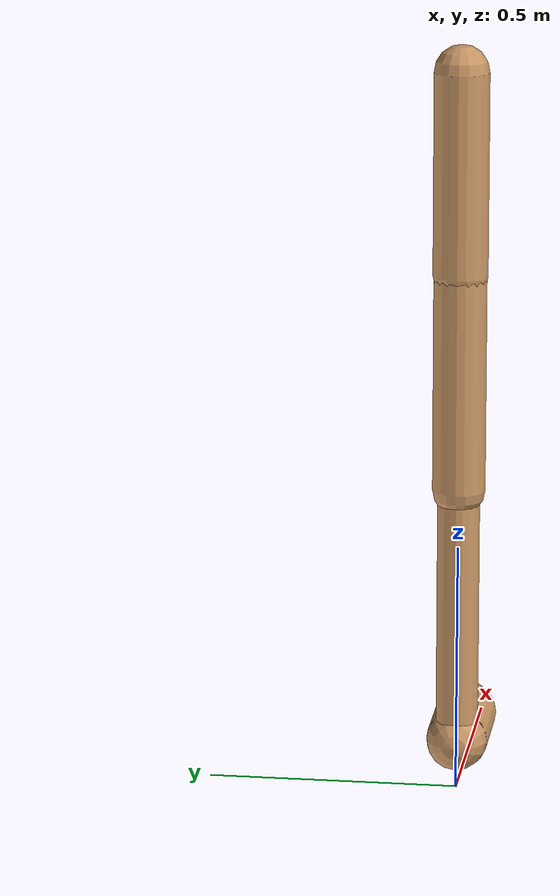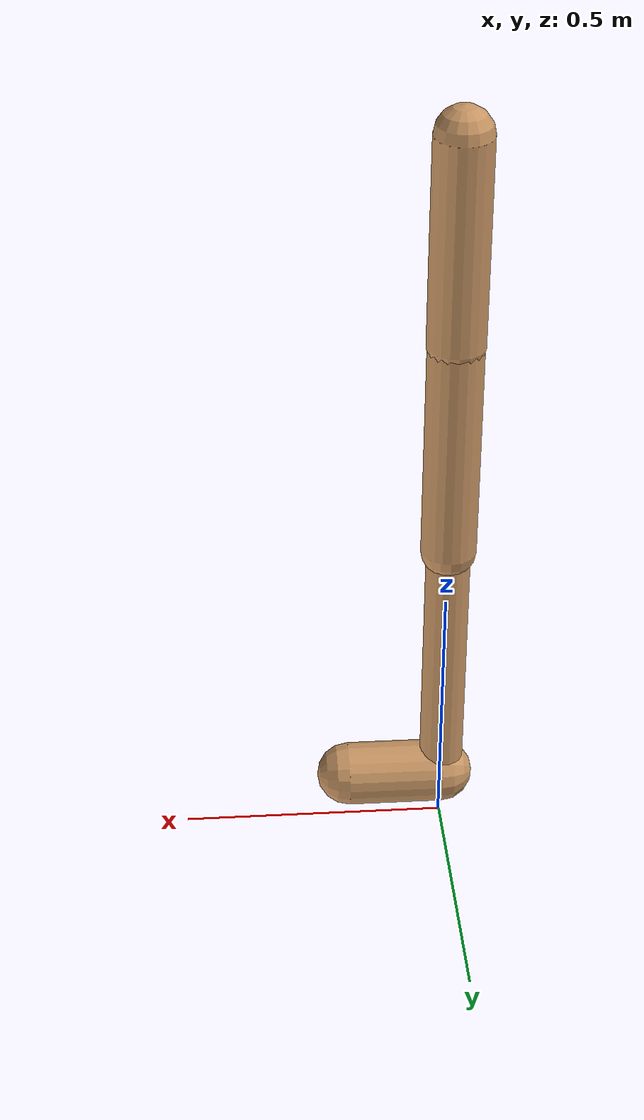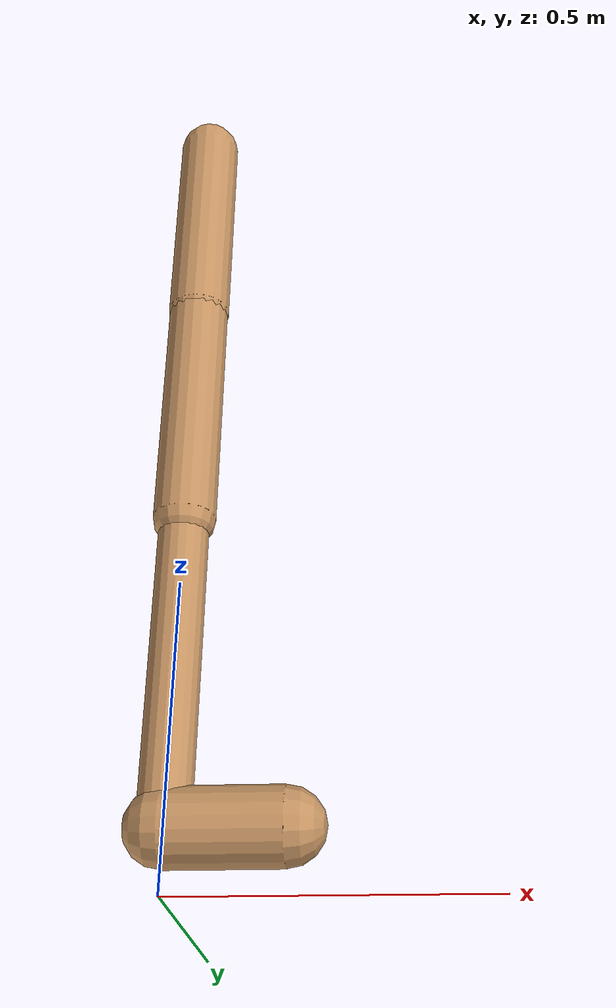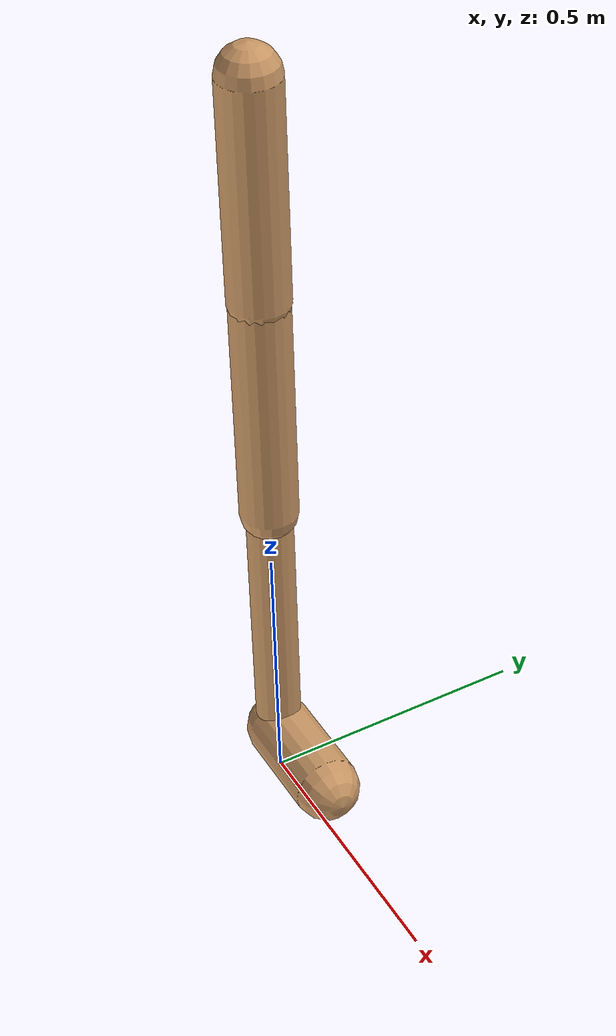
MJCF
<mujoco model="walker2d">
  <compiler angle="degree" coordinate="global" inertiafromgeom="true" />
  <default>
    <joint armature="0.01" damping=".1" limited="true" />
    <geom conaffinity="0" condim="3" contype="1" density="1000" friction="0.8 .1 .1" rgba="0.8 0.6 .4 1" />
  </default>
  <option integrator="RK4" timestep="0.002" />
  <worldbody>

    <body name="torso" pos="0 0 -0.04088547389536094">
      <joint armature="0" axis="1 0 0" damping="0" limited="false" name="ignorex" pos="0 0 0" stiffness="0" type="slide" />
      <joint armature="0" axis="0 0 1" damping="0" limited="false" name="ignorez" pos="0 0 0" ref="1.25" stiffness="0" type="slide" />
      <joint armature="0" axis="0 1 0" damping="0" limited="false" name="ignorey" pos="0 0 0" stiffness="0" type="hinge" />
      <geom fromto="0 0 1.45 0 0 1.05" name="torso_geom" size="0.054207352489856586" type="capsule" />
      <body name="thigh">
        <joint axis="0 -1 0" name="thigh_joint" pos="0 0 1.05" range="-150 0" type="hinge" />
        <geom fromto="0.0 0.0 1.05 0.0 0.0 0.6193668034241183" name="thigh_geom" size="0.052386328110676894" type="capsule" />
        <body name="leg" pos="0.0 0.0 0.01936680342411834">
          <joint axis="0 -1 0" name="leg_joint" pos="0 0 0.6" range="-150 0" type="hinge" />
          <geom fromto="0.0 0.0 0.6 0.0 0.0 0.1215186704712426" name="leg_geom" size="0.04190906248854152" type="capsule" />
          <body name="foot" pos="0.0 0.0 0.02151867047124259">
            <joint axis="0 -1 0" name="foot_joint" pos="0 0 0.1" range="-45 45" type="hinge" />
            <geom fromto="0.0 0.0 0.10000000000000002 0.18178659501245528 0.0 0.10000000000000002" name="foot_geom" size="0.06079474369119606" type="capsule" />
          </body>
        </body>
      </body>

      <body name="thigh_left">
        <joint axis="0 -1 0" name="thigh_left_joint" pos="0 0 1.05" range="-150 0" type="hinge" />
        <geom fromto="0.0 0.0 1.05 0.0 0.0 0.6193668034241183" name="thigh_left_geom" rgba=".7 .3 .6 1" size="0.052386328110676894" type="capsule" />
        <body name="leg_left" pos="0.0 0.0 0.01936680342411834">
          <joint axis="0 -1 0" name="leg_left_joint" pos="0 0 0.6" range="-150 0" type="hinge" />
          <geom fromto="0.0 0.0 0.6 0.0 0.0 0.1215186704712426" name="leg_left_geom" rgba=".7 .3 .6 1" size="0.04190906248854152" type="capsule" />
          <body name="foot_left" pos="0.0 0.0 0.02151867047124259">
            <joint axis="0 -1 0" name="foot_left_joint" pos="0 0 0.1" range="-45 45" type="hinge" />
            <geom fromto="0.0 0.0 0.10000000000000002 0.18178659501245528 0.0 0.10000000000000002" name="foot_left_geom" rgba=".7 .3 .6 1" size="0.06079474369119606" type="capsule" />
          </body>
        </body>
      </body>
    </body>
  </worldbody>
  <actuator>

    <motor ctrllimited="true" ctrlrange="-1.0 1.0" gear="100" joint="thigh_joint" />
    <motor ctrllimited="true" ctrlrange="-1.0 1.0" gear="100" joint="leg_joint" />
    <motor ctrllimited="true" ctrlrange="-1.0 1.0" gear="100" joint="foot_joint" />
    <motor ctrllimited="true" ctrlrange="-1.0 1.0" gear="100" joint="thigh_left_joint" />
    <motor ctrllimited="true" ctrlrange="-1.0 1.0" gear="100" joint="leg_left_joint" />
    <motor ctrllimited="true" ctrlrange="-1.0 1.0" gear="100" joint="foot_left_joint" />

  </actuator>
</mujoco>
